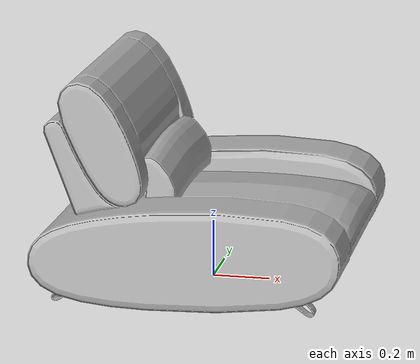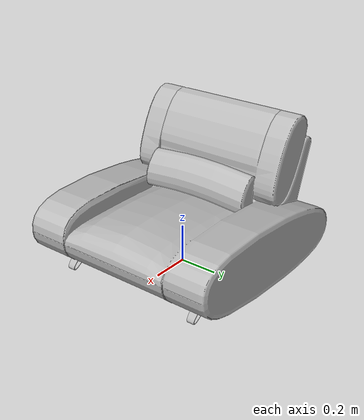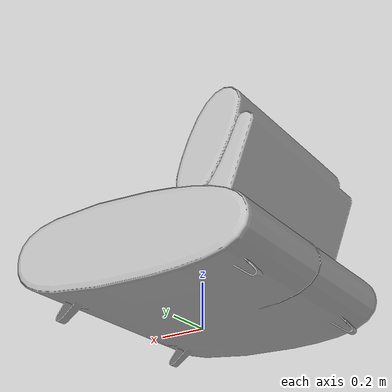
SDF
<?xml version='1.0'?>
<sdf version='1.4'>
  <model name='s__2435'>
    <pose>0 0 0 0 0 0</pose>
    <static>true</static>
    <link name='link'>
      <collision name='collision'>
        <pose>0 0 0 0 0 0</pose>
        <geometry>
          <box>
            <size>1.07 1.07 2</size>
          </box>
        </geometry>
      </collision>
      <visual name='visual'>
        <pose>0 0 0 0 0 0</pose>
        <geometry>
          <mesh><uri>model://s__2435/s__2435.dae</uri></mesh>
        </geometry>
      </visual>
    </link>
  </model>
</sdf>
